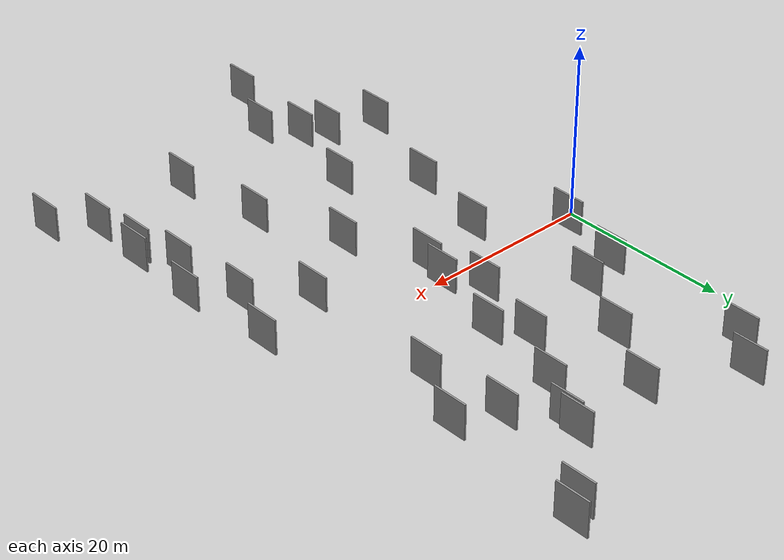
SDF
<sdf version="1.6">
 <world name="default">
  <scene>
   <sky><clouds><speed>12</speed></clouds></sky>
   <ambient>0.4 0.4 0.4 1</ambient>
   <background>0.7 0.7 0.7 1</background>
   <shadows>1</shadows>
  </scene>
  <gravity>0 0 -9.8066</gravity>
  <magnetic_field>6e-06 2.3e-05 -4.2e-05</magnetic_field>
  <physics default="0" name="default_physics" type="ode">
   <ode>
    <solver>
     <type>quick</type>
     <iters>10</iters>
     <sor>1.0</sor>
     <use_dynamic_moi_rescaling>0</use_dynamic_moi_rescaling>
    </solver>
    <constraints>
     <cfm>0</cfm>
     <erp>0.2</erp>
     <contact_max_correcting_vel>100</contact_max_correcting_vel>
     <contact_surface_layer>0.001</contact_surface_layer>
    </constraints>
   </ode>
   <max_step_size>0.004</max_step_size>
   <real_time_factor>1</real_time_factor>
   <real_time_update_rate>250</real_time_update_rate>
  </physics>
  <light name="sun" type="directional">
   <pose>0 0 10 0 0 0</pose>
   <diffuse>0.8 0.8 0.8 1</diffuse>
   <specular>0.2 0.2 0.2 1</specular>
   <attenuation>
    <range>1000</range>
    <constant>0.9</constant>
    <linear>0.01</linear>
    <quadratic>0.001</quadratic>
   </attenuation>
   <direction>-0.5 0.1 -0.9</direction>
  </light>
  <model name="grey_wall_1">
   <static>1</static>
   <pose>39.0134 36.8604 2.5 0.000000 0.000000 1.570796</pose>
   <link name="link">
    <pose>0 0 2.00 0 0 0</pose>
    <collision name="collision"><geometry><box><size>4.00 0.2 4.00</size></box></geometry></collision>
    <visual name="visual">
     <cast_shadows>0</cast_shadows>
     <geometry><box><size>4.00 0.2 4.00</size></box></geometry>
     <material>
      <script>
       <uri>model://grey_wall/materials/scripts</uri>
       <uri>model://grey_wall/materials/textures</uri>
       <name>vrc/grey_wall</name>
      </script>
     </material>
    </visual>
   </link>
  </model>
  <model name="grey_wall_2">
   <static>1</static>
   <pose>38.7398 -7.8205 2.5 0.000000 0.000000 1.570796</pose>
   <link name="link">
    <pose>0 0 2.00 0 0 0</pose>
    <collision name="collision"><geometry><box><size>4.00 0.2 4.00</size></box></geometry></collision>
    <visual name="visual">
     <cast_shadows>0</cast_shadows>
     <geometry><box><size>4.00 0.2 4.00</size></box></geometry>
     <material>
      <script>
       <uri>model://grey_wall/materials/scripts</uri>
       <uri>model://grey_wall/materials/textures</uri>
       <name>vrc/grey_wall</name>
      </script>
     </material>
    </visual>
   </link>
  </model>
  <model name="grey_wall_3">
   <static>1</static>
   <pose>24.6371 12.2118 2.5 0.000000 0.000000 1.570796</pose>
   <link name="link">
    <pose>0 0 2.00 0 0 0</pose>
    <collision name="collision"><geometry><box><size>4.00 0.2 4.00</size></box></geometry></collision>
    <visual name="visual">
     <cast_shadows>0</cast_shadows>
     <geometry><box><size>4.00 0.2 4.00</size></box></geometry>
     <material>
      <script>
       <uri>model://grey_wall/materials/scripts</uri>
       <uri>model://grey_wall/materials/textures</uri>
       <name>vrc/grey_wall</name>
      </script>
     </material>
    </visual>
   </link>
  </model>
  <model name="grey_wall_4">
   <static>1</static>
   <pose>32.9320 22.3779 2.5 0.000000 0.000000 1.570796</pose>
   <link name="link">
    <pose>0 0 2.00 0 0 0</pose>
    <collision name="collision"><geometry><box><size>4.00 0.2 4.00</size></box></geometry></collision>
    <visual name="visual">
     <cast_shadows>0</cast_shadows>
     <geometry><box><size>4.00 0.2 4.00</size></box></geometry>
     <material>
      <script>
       <uri>model://grey_wall/materials/scripts</uri>
       <uri>model://grey_wall/materials/textures</uri>
       <name>vrc/grey_wall</name>
      </script>
     </material>
    </visual>
   </link>
  </model>
  <model name="grey_wall_5">
   <static>1</static>
   <pose>40.7727 -21.5991 2.5 0.000000 0.000000 1.570796</pose>
   <link name="link">
    <pose>0 0 2.00 0 0 0</pose>
    <collision name="collision"><geometry><box><size>4.00 0.2 4.00</size></box></geometry></collision>
    <visual name="visual">
     <cast_shadows>0</cast_shadows>
     <geometry><box><size>4.00 0.2 4.00</size></box></geometry>
     <material>
      <script>
       <uri>model://grey_wall/materials/scripts</uri>
       <uri>model://grey_wall/materials/textures</uri>
       <name>vrc/grey_wall</name>
      </script>
     </material>
    </visual>
   </link>
  </model>
  <model name="grey_wall_6">
   <static>1</static>
   <pose>37.4155 20.2576 2.5 0.000000 0.000000 1.570796</pose>
   <link name="link">
    <pose>0 0 2.00 0 0 0</pose>
    <collision name="collision"><geometry><box><size>4.00 0.2 4.00</size></box></geometry></collision>
    <visual name="visual">
     <cast_shadows>0</cast_shadows>
     <geometry><box><size>4.00 0.2 4.00</size></box></geometry>
     <material>
      <script>
       <uri>model://grey_wall/materials/scripts</uri>
       <uri>model://grey_wall/materials/textures</uri>
       <name>vrc/grey_wall</name>
      </script>
     </material>
    </visual>
   </link>
  </model>
  <model name="grey_wall_7">
   <static>1</static>
   <pose>45.2404 -31.1126 2.5 0.000000 0.000000 1.570796</pose>
   <link name="link">
    <pose>0 0 2.00 0 0 0</pose>
    <collision name="collision"><geometry><box><size>4.00 0.2 4.00</size></box></geometry></collision>
    <visual name="visual">
     <cast_shadows>0</cast_shadows>
     <geometry><box><size>4.00 0.2 4.00</size></box></geometry>
     <material>
      <script>
       <uri>model://grey_wall/materials/scripts</uri>
       <uri>model://grey_wall/materials/textures</uri>
       <name>vrc/grey_wall</name>
      </script>
     </material>
    </visual>
   </link>
  </model>
  <model name="grey_wall_8">
   <static>1</static>
   <pose>33.8251 13.3349 2.5 0.000000 0.000000 1.570796</pose>
   <link name="link">
    <pose>0 0 2.00 0 0 0</pose>
    <collision name="collision"><geometry><box><size>4.00 0.2 4.00</size></box></geometry></collision>
    <visual name="visual">
     <cast_shadows>0</cast_shadows>
     <geometry><box><size>4.00 0.2 4.00</size></box></geometry>
     <material>
      <script>
       <uri>model://grey_wall/materials/scripts</uri>
       <uri>model://grey_wall/materials/textures</uri>
       <name>vrc/grey_wall</name>
      </script>
     </material>
    </visual>
   </link>
  </model>
  <model name="grey_wall_9">
   <static>1</static>
   <pose>10.6531 -11.6254 2.5 0.000000 0.000000 1.570796</pose>
   <link name="link">
    <pose>0 0 2.00 0 0 0</pose>
    <collision name="collision"><geometry><box><size>4.00 0.2 4.00</size></box></geometry></collision>
    <visual name="visual">
     <cast_shadows>0</cast_shadows>
     <geometry><box><size>4.00 0.2 4.00</size></box></geometry>
     <material>
      <script>
       <uri>model://grey_wall/materials/scripts</uri>
       <uri>model://grey_wall/materials/textures</uri>
       <name>vrc/grey_wall</name>
      </script>
     </material>
    </visual>
   </link>
  </model>
  <model name="grey_wall_10">
   <static>1</static>
   <pose>19.7617 6.8065 2.5 0.000000 0.000000 1.570796</pose>
   <link name="link">
    <pose>0 0 2.00 0 0 0</pose>
    <collision name="collision"><geometry><box><size>4.00 0.2 4.00</size></box></geometry></collision>
    <visual name="visual">
     <cast_shadows>0</cast_shadows>
     <geometry><box><size>4.00 0.2 4.00</size></box></geometry>
     <material>
      <script>
       <uri>model://grey_wall/materials/scripts</uri>
       <uri>model://grey_wall/materials/textures</uri>
       <name>vrc/grey_wall</name>
      </script>
     </material>
    </visual>
   </link>
  </model>
  <model name="grey_wall_11">
   <static>1</static>
   <pose>11.3682 -26.1498 2.5 0.000000 0.000000 1.570796</pose>
   <link name="link">
    <pose>0 0 2.00 0 0 0</pose>
    <collision name="collision"><geometry><box><size>4.00 0.2 4.00</size></box></geometry></collision>
    <visual name="visual">
     <cast_shadows>0</cast_shadows>
     <geometry><box><size>4.00 0.2 4.00</size></box></geometry>
     <material>
      <script>
       <uri>model://grey_wall/materials/scripts</uri>
       <uri>model://grey_wall/materials/textures</uri>
       <name>vrc/grey_wall</name>
      </script>
     </material>
    </visual>
   </link>
  </model>
  <model name="grey_wall_12">
   <static>1</static>
   <pose>42.4686 -11.6364 2.5 0.000000 0.000000 1.570796</pose>
   <link name="link">
    <pose>0 0 2.00 0 0 0</pose>
    <collision name="collision"><geometry><box><size>4.00 0.2 4.00</size></box></geometry></collision>
    <visual name="visual">
     <cast_shadows>0</cast_shadows>
     <geometry><box><size>4.00 0.2 4.00</size></box></geometry>
     <material>
      <script>
       <uri>model://grey_wall/materials/scripts</uri>
       <uri>model://grey_wall/materials/textures</uri>
       <name>vrc/grey_wall</name>
      </script>
     </material>
    </visual>
   </link>
  </model>
  <model name="grey_wall_13">
   <static>1</static>
   <pose>5.9294 -24.2866 2.5 0.000000 0.000000 1.570796</pose>
   <link name="link">
    <pose>0 0 2.00 0 0 0</pose>
    <collision name="collision"><geometry><box><size>4.00 0.2 4.00</size></box></geometry></collision>
    <visual name="visual">
     <cast_shadows>0</cast_shadows>
     <geometry><box><size>4.00 0.2 4.00</size></box></geometry>
     <material>
      <script>
       <uri>model://grey_wall/materials/scripts</uri>
       <uri>model://grey_wall/materials/textures</uri>
       <name>vrc/grey_wall</name>
      </script>
     </material>
    </visual>
   </link>
  </model>
  <model name="grey_wall_14">
   <static>1</static>
   <pose>24.6524 -8.5791 2.5 0.000000 0.000000 1.570796</pose>
   <link name="link">
    <pose>0 0 2.00 0 0 0</pose>
    <collision name="collision"><geometry><box><size>4.00 0.2 4.00</size></box></geometry></collision>
    <visual name="visual">
     <cast_shadows>0</cast_shadows>
     <geometry><box><size>4.00 0.2 4.00</size></box></geometry>
     <material>
      <script>
       <uri>model://grey_wall/materials/scripts</uri>
       <uri>model://grey_wall/materials/textures</uri>
       <name>vrc/grey_wall</name>
      </script>
     </material>
    </visual>
   </link>
  </model>
  <model name="grey_wall_15">
   <static>1</static>
   <pose>41.9282 -20.5291 2.5 0.000000 0.000000 1.570796</pose>
   <link name="link">
    <pose>0 0 2.00 0 0 0</pose>
    <collision name="collision"><geometry><box><size>4.00 0.2 4.00</size></box></geometry></collision>
    <visual name="visual">
     <cast_shadows>0</cast_shadows>
     <geometry><box><size>4.00 0.2 4.00</size></box></geometry>
     <material>
      <script>
       <uri>model://grey_wall/materials/scripts</uri>
       <uri>model://grey_wall/materials/textures</uri>
       <name>vrc/grey_wall</name>
      </script>
     </material>
    </visual>
   </link>
  </model>
  <model name="grey_wall_16">
   <static>1</static>
   <pose>13.0141 -38.7148 2.5 0.000000 0.000000 1.570796</pose>
   <link name="link">
    <pose>0 0 2.00 0 0 0</pose>
    <collision name="collision"><geometry><box><size>4.00 0.2 4.00</size></box></geometry></collision>
    <visual name="visual">
     <cast_shadows>0</cast_shadows>
     <geometry><box><size>4.00 0.2 4.00</size></box></geometry>
     <material>
      <script>
       <uri>model://grey_wall/materials/scripts</uri>
       <uri>model://grey_wall/materials/textures</uri>
       <name>vrc/grey_wall</name>
      </script>
     </material>
    </visual>
   </link>
  </model>
  <model name="grey_wall_17">
   <static>1</static>
   <pose>22.3509 15.6423 2.5 0.000000 0.000000 1.570796</pose>
   <link name="link">
    <pose>0 0 2.00 0 0 0</pose>
    <collision name="collision"><geometry><box><size>4.00 0.2 4.00</size></box></geometry></collision>
    <visual name="visual">
     <cast_shadows>0</cast_shadows>
     <geometry><box><size>4.00 0.2 4.00</size></box></geometry>
     <material>
      <script>
       <uri>model://grey_wall/materials/scripts</uri>
       <uri>model://grey_wall/materials/textures</uri>
       <name>vrc/grey_wall</name>
      </script>
     </material>
    </visual>
   </link>
  </model>
  <model name="grey_wall_18">
   <static>1</static>
   <pose>33.3557 -3.2008 2.5 0.000000 0.000000 1.570796</pose>
   <link name="link">
    <pose>0 0 2.00 0 0 0</pose>
    <collision name="collision"><geometry><box><size>4.00 0.2 4.00</size></box></geometry></collision>
    <visual name="visual">
     <cast_shadows>0</cast_shadows>
     <geometry><box><size>4.00 0.2 4.00</size></box></geometry>
     <material>
      <script>
       <uri>model://grey_wall/materials/scripts</uri>
       <uri>model://grey_wall/materials/textures</uri>
       <name>vrc/grey_wall</name>
      </script>
     </material>
    </visual>
   </link>
  </model>
  <model name="grey_wall_19">
   <static>1</static>
   <pose>7.2029 11.9406 2.5 0.000000 0.000000 1.570796</pose>
   <link name="link">
    <pose>0 0 2.00 0 0 0</pose>
    <collision name="collision"><geometry><box><size>4.00 0.2 4.00</size></box></geometry></collision>
    <visual name="visual">
     <cast_shadows>0</cast_shadows>
     <geometry><box><size>4.00 0.2 4.00</size></box></geometry>
     <material>
      <script>
       <uri>model://grey_wall/materials/scripts</uri>
       <uri>model://grey_wall/materials/textures</uri>
       <name>vrc/grey_wall</name>
      </script>
     </material>
    </visual>
   </link>
  </model>
  <model name="grey_wall_20">
   <static>1</static>
   <pose>29.9802 -28.0832 2.5 0.000000 0.000000 1.570796</pose>
   <link name="link">
    <pose>0 0 2.00 0 0 0</pose>
    <collision name="collision"><geometry><box><size>4.00 0.2 4.00</size></box></geometry></collision>
    <visual name="visual">
     <cast_shadows>0</cast_shadows>
     <geometry><box><size>4.00 0.2 4.00</size></box></geometry>
     <material>
      <script>
       <uri>model://grey_wall/materials/scripts</uri>
       <uri>model://grey_wall/materials/textures</uri>
       <name>vrc/grey_wall</name>
      </script>
     </material>
    </visual>
   </link>
  </model>
  <model name="grey_wall_21">
   <static>1</static>
   <pose>11.6890 13.0171 2.5 0.000000 0.000000 1.570796</pose>
   <link name="link">
    <pose>0 0 2.00 0 0 0</pose>
    <collision name="collision"><geometry><box><size>4.00 0.2 4.00</size></box></geometry></collision>
    <visual name="visual">
     <cast_shadows>0</cast_shadows>
     <geometry><box><size>4.00 0.2 4.00</size></box></geometry>
     <material>
      <script>
       <uri>model://grey_wall/materials/scripts</uri>
       <uri>model://grey_wall/materials/textures</uri>
       <name>vrc/grey_wall</name>
      </script>
     </material>
    </visual>
   </link>
  </model>
  <model name="grey_wall_22">
   <static>1</static>
   <pose>17.1662 -17.5642 2.5 0.000000 0.000000 1.570796</pose>
   <link name="link">
    <pose>0 0 2.00 0 0 0</pose>
    <collision name="collision"><geometry><box><size>4.00 0.2 4.00</size></box></geometry></collision>
    <visual name="visual">
     <cast_shadows>0</cast_shadows>
     <geometry><box><size>4.00 0.2 4.00</size></box></geometry>
     <material>
      <script>
       <uri>model://grey_wall/materials/scripts</uri>
       <uri>model://grey_wall/materials/textures</uri>
       <name>vrc/grey_wall</name>
      </script>
     </material>
    </visual>
   </link>
  </model>
  <model name="grey_wall_23">
   <static>1</static>
   <pose>20.6948 28.2850 2.5 0.000000 0.000000 1.570796</pose>
   <link name="link">
    <pose>0 0 2.00 0 0 0</pose>
    <collision name="collision"><geometry><box><size>4.00 0.2 4.00</size></box></geometry></collision>
    <visual name="visual">
     <cast_shadows>0</cast_shadows>
     <geometry><box><size>4.00 0.2 4.00</size></box></geometry>
     <material>
      <script>
       <uri>model://grey_wall/materials/scripts</uri>
       <uri>model://grey_wall/materials/textures</uri>
       <name>vrc/grey_wall</name>
      </script>
     </material>
    </visual>
   </link>
  </model>
  <model name="grey_wall_24">
   <static>1</static>
   <pose>16.0948 20.7748 2.5 0.000000 0.000000 1.570796</pose>
   <link name="link">
    <pose>0 0 2.00 0 0 0</pose>
    <collision name="collision"><geometry><box><size>4.00 0.2 4.00</size></box></geometry></collision>
    <visual name="visual">
     <cast_shadows>0</cast_shadows>
     <geometry><box><size>4.00 0.2 4.00</size></box></geometry>
     <material>
      <script>
       <uri>model://grey_wall/materials/scripts</uri>
       <uri>model://grey_wall/materials/textures</uri>
       <name>vrc/grey_wall</name>
      </script>
     </material>
    </visual>
   </link>
  </model>
  <model name="grey_wall_25">
   <static>1</static>
   <pose>26.5294 22.2256 2.5 0.000000 0.000000 1.570796</pose>
   <link name="link">
    <pose>0 0 2.00 0 0 0</pose>
    <collision name="collision"><geometry><box><size>4.00 0.2 4.00</size></box></geometry></collision>
    <visual name="visual">
     <cast_shadows>0</cast_shadows>
     <geometry><box><size>4.00 0.2 4.00</size></box></geometry>
     <material>
      <script>
       <uri>model://grey_wall/materials/scripts</uri>
       <uri>model://grey_wall/materials/textures</uri>
       <name>vrc/grey_wall</name>
      </script>
     </material>
    </visual>
   </link>
  </model>
  <model name="grey_wall_26">
   <static>1</static>
   <pose>36.8436 35.5053 2.5 0.000000 0.000000 1.570796</pose>
   <link name="link">
    <pose>0 0 2.00 0 0 0</pose>
    <collision name="collision"><geometry><box><size>4.00 0.2 4.00</size></box></geometry></collision>
    <visual name="visual">
     <cast_shadows>0</cast_shadows>
     <geometry><box><size>4.00 0.2 4.00</size></box></geometry>
     <material>
      <script>
       <uri>model://grey_wall/materials/scripts</uri>
       <uri>model://grey_wall/materials/textures</uri>
       <name>vrc/grey_wall</name>
      </script>
     </material>
    </visual>
   </link>
  </model>
  <model name="grey_wall_27">
   <static>1</static>
   <pose>7.8432 29.3273 2.5 0.000000 0.000000 1.570796</pose>
   <link name="link">
    <pose>0 0 2.00 0 0 0</pose>
    <collision name="collision"><geometry><box><size>4.00 0.2 4.00</size></box></geometry></collision>
    <visual name="visual">
     <cast_shadows>0</cast_shadows>
     <geometry><box><size>4.00 0.2 4.00</size></box></geometry>
     <material>
      <script>
       <uri>model://grey_wall/materials/scripts</uri>
       <uri>model://grey_wall/materials/textures</uri>
       <name>vrc/grey_wall</name>
      </script>
     </material>
    </visual>
   </link>
  </model>
  <model name="grey_wall_28">
   <static>1</static>
   <pose>39.5369 -16.3894 2.5 0.000000 0.000000 1.570796</pose>
   <link name="link">
    <pose>0 0 2.00 0 0 0</pose>
    <collision name="collision"><geometry><box><size>4.00 0.2 4.00</size></box></geometry></collision>
    <visual name="visual">
     <cast_shadows>0</cast_shadows>
     <geometry><box><size>4.00 0.2 4.00</size></box></geometry>
     <material>
      <script>
       <uri>model://grey_wall/materials/scripts</uri>
       <uri>model://grey_wall/materials/textures</uri>
       <name>vrc/grey_wall</name>
      </script>
     </material>
    </visual>
   </link>
  </model>
  <model name="grey_wall_29">
   <static>1</static>
   <pose>13.0345 -1.8233 2.5 0.000000 0.000000 1.570796</pose>
   <link name="link">
    <pose>0 0 2.00 0 0 0</pose>
    <collision name="collision"><geometry><box><size>4.00 0.2 4.00</size></box></geometry></collision>
    <visual name="visual">
     <cast_shadows>0</cast_shadows>
     <geometry><box><size>4.00 0.2 4.00</size></box></geometry>
     <material>
      <script>
       <uri>model://grey_wall/materials/scripts</uri>
       <uri>model://grey_wall/materials/textures</uri>
       <name>vrc/grey_wall</name>
      </script>
     </material>
    </visual>
   </link>
  </model>
  <model name="grey_wall_30">
   <static>1</static>
   <pose>11.2155 33.1189 2.5 0.000000 0.000000 1.570796</pose>
   <link name="link">
    <pose>0 0 2.00 0 0 0</pose>
    <collision name="collision"><geometry><box><size>4.00 0.2 4.00</size></box></geometry></collision>
    <visual name="visual">
     <cast_shadows>0</cast_shadows>
     <geometry><box><size>4.00 0.2 4.00</size></box></geometry>
     <material>
      <script>
       <uri>model://grey_wall/materials/scripts</uri>
       <uri>model://grey_wall/materials/textures</uri>
       <name>vrc/grey_wall</name>
      </script>
     </material>
    </visual>
   </link>
  </model>
  <model name="grey_wall_31">
   <static>1</static>
   <pose>16.5820 -31.3012 2.5 0.000000 0.000000 1.570796</pose>
   <link name="link">
    <pose>0 0 2.00 0 0 0</pose>
    <collision name="collision"><geometry><box><size>4.00 0.2 4.00</size></box></geometry></collision>
    <visual name="visual">
     <cast_shadows>0</cast_shadows>
     <geometry><box><size>4.00 0.2 4.00</size></box></geometry>
     <material>
      <script>
       <uri>model://grey_wall/materials/scripts</uri>
       <uri>model://grey_wall/materials/textures</uri>
       <name>vrc/grey_wall</name>
      </script>
     </material>
    </visual>
   </link>
  </model>
  <model name="grey_wall_32">
   <static>1</static>
   <pose>21.8891 3.0301 2.5 0.000000 0.000000 1.570796</pose>
   <link name="link">
    <pose>0 0 2.00 0 0 0</pose>
    <collision name="collision"><geometry><box><size>4.00 0.2 4.00</size></box></geometry></collision>
    <visual name="visual">
     <cast_shadows>0</cast_shadows>
     <geometry><box><size>4.00 0.2 4.00</size></box></geometry>
     <material>
      <script>
       <uri>model://grey_wall/materials/scripts</uri>
       <uri>model://grey_wall/materials/textures</uri>
       <name>vrc/grey_wall</name>
      </script>
     </material>
    </visual>
   </link>
  </model>
  <model name="grey_wall_33">
   <static>1</static>
   <pose>5.1146 4.1148 2.5 0.000000 0.000000 1.570796</pose>
   <link name="link">
    <pose>0 0 2.00 0 0 0</pose>
    <collision name="collision"><geometry><box><size>4.00 0.2 4.00</size></box></geometry></collision>
    <visual name="visual">
     <cast_shadows>0</cast_shadows>
     <geometry><box><size>4.00 0.2 4.00</size></box></geometry>
     <material>
      <script>
       <uri>model://grey_wall/materials/scripts</uri>
       <uri>model://grey_wall/materials/textures</uri>
       <name>vrc/grey_wall</name>
      </script>
     </material>
    </visual>
   </link>
  </model>
  <model name="grey_wall_34">
   <static>1</static>
   <pose>28.4314 -17.9806 2.5 0.000000 0.000000 1.570796</pose>
   <link name="link">
    <pose>0 0 2.00 0 0 0</pose>
    <collision name="collision"><geometry><box><size>4.00 0.2 4.00</size></box></geometry></collision>
    <visual name="visual">
     <cast_shadows>0</cast_shadows>
     <geometry><box><size>4.00 0.2 4.00</size></box></geometry>
     <material>
      <script>
       <uri>model://grey_wall/materials/scripts</uri>
       <uri>model://grey_wall/materials/textures</uri>
       <name>vrc/grey_wall</name>
      </script>
     </material>
    </visual>
   </link>
  </model>
  <model name="grey_wall_35">
   <static>1</static>
   <pose>20.9923 -0.0692 2.5 0.000000 0.000000 1.570796</pose>
   <link name="link">
    <pose>0 0 2.00 0 0 0</pose>
    <collision name="collision"><geometry><box><size>4.00 0.2 4.00</size></box></geometry></collision>
    <visual name="visual">
     <cast_shadows>0</cast_shadows>
     <geometry><box><size>4.00 0.2 4.00</size></box></geometry>
     <material>
      <script>
       <uri>model://grey_wall/materials/scripts</uri>
       <uri>model://grey_wall/materials/textures</uri>
       <name>vrc/grey_wall</name>
      </script>
     </material>
    </visual>
   </link>
  </model>
  <model name="grey_wall_36">
   <static>1</static>
   <pose>29.3655 27.0623 2.5 0.000000 0.000000 1.570796</pose>
   <link name="link">
    <pose>0 0 2.00 0 0 0</pose>
    <collision name="collision"><geometry><box><size>4.00 0.2 4.00</size></box></geometry></collision>
    <visual name="visual">
     <cast_shadows>0</cast_shadows>
     <geometry><box><size>4.00 0.2 4.00</size></box></geometry>
     <material>
      <script>
       <uri>model://grey_wall/materials/scripts</uri>
       <uri>model://grey_wall/materials/textures</uri>
       <name>vrc/grey_wall</name>
      </script>
     </material>
    </visual>
   </link>
  </model>
  <model name="grey_wall_37">
   <static>1</static>
   <pose>41.5450 -1.0645 2.5 0.000000 0.000000 1.570796</pose>
   <link name="link">
    <pose>0 0 2.00 0 0 0</pose>
    <collision name="collision"><geometry><box><size>4.00 0.2 4.00</size></box></geometry></collision>
    <visual name="visual">
     <cast_shadows>0</cast_shadows>
     <geometry><box><size>4.00 0.2 4.00</size></box></geometry>
     <material>
      <script>
       <uri>model://grey_wall/materials/scripts</uri>
       <uri>model://grey_wall/materials/textures</uri>
       <name>vrc/grey_wall</name>
      </script>
     </material>
    </visual>
   </link>
  </model>
  <model name="grey_wall_38">
   <static>1</static>
   <pose>13.7815 -27.8341 2.5 0.000000 0.000000 1.570796</pose>
   <link name="link">
    <pose>0 0 2.00 0 0 0</pose>
    <collision name="collision"><geometry><box><size>4.00 0.2 4.00</size></box></geometry></collision>
    <visual name="visual">
     <cast_shadows>0</cast_shadows>
     <geometry><box><size>4.00 0.2 4.00</size></box></geometry>
     <material>
      <script>
       <uri>model://grey_wall/materials/scripts</uri>
       <uri>model://grey_wall/materials/textures</uri>
       <name>vrc/grey_wall</name>
      </script>
     </material>
    </visual>
   </link>
  </model>
  <model name="grey_wall_39">
   <static>1</static>
   <pose>29.7654 28.6937 2.5 0.000000 0.000000 1.570796</pose>
   <link name="link">
    <pose>0 0 2.00 0 0 0</pose>
    <collision name="collision"><geometry><box><size>4.00 0.2 4.00</size></box></geometry></collision>
    <visual name="visual">
     <cast_shadows>0</cast_shadows>
     <geometry><box><size>4.00 0.2 4.00</size></box></geometry>
     <material>
      <script>
       <uri>model://grey_wall/materials/scripts</uri>
       <uri>model://grey_wall/materials/textures</uri>
       <name>vrc/grey_wall</name>
      </script>
     </material>
    </visual>
   </link>
  </model>
  <model name="grey_wall_40">
   <static>1</static>
   <pose>41.3021 -27.4335 2.5 0.000000 0.000000 1.570796</pose>
   <link name="link">
    <pose>0 0 2.00 0 0 0</pose>
    <collision name="collision"><geometry><box><size>4.00 0.2 4.00</size></box></geometry></collision>
    <visual name="visual">
     <cast_shadows>0</cast_shadows>
     <geometry><box><size>4.00 0.2 4.00</size></box></geometry>
     <material>
      <script>
       <uri>model://grey_wall/materials/scripts</uri>
       <uri>model://grey_wall/materials/textures</uri>
       <name>vrc/grey_wall</name>
      </script>
     </material>
    </visual>
   </link>
  </model>
 </world>
</sdf>
